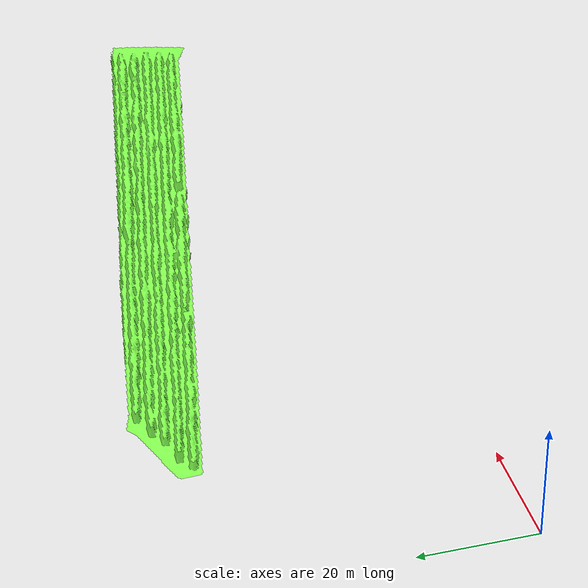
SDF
<?xml version='1.0'?>
<sdf version='1.10'>
  <model name='training_field'>
    <link name='link_0'>
      <pose>0 0 0 1.57 -0 0</pose>
      <self_collide>0</self_collide>
      <enable_wind>0</enable_wind>
      <kinematic>0</kinematic>
      <gravity>0</gravity>
      <visual name='visual'>
        <pose>0 0 0 0 0 0</pose>
        <geometry>
          <mesh>
            <uri>model://training_field/Data/training_field.obj</uri>
            <scale>275 275 275</scale>
          </mesh>
        </geometry>
        <material>
          <lighting>1</lighting>
          <shader type='pixel'>
            <normal_map>__default__</normal_map>
          </shader>
          <ambient>0.5 1 0.3 1</ambient>
          <diffuse>0.5 1 0.3 1</diffuse>
          <specular>0.1 0.1 0.1 1</specular>
          <emissive>0 0 0 1</emissive>
        </material>
        <cast_shadows>1</cast_shadows>
      </visual>
      <collision name='collision'>
        <laser_retro>1</laser_retro>
        <max_contacts>10</max_contacts>
        <pose>0 0 0 0 -0 0</pose>
        <geometry>
          <mesh>
            <uri>model://field1/Data/field1.obj</uri>
            <scale>275 275 275</scale>
          </mesh>
        </geometry>
        <surface>
          <contact>
            <collide_without_contact>1</collide_without_contact>
          </contact>
        </surface>
      </collision>
    </link>
    <static>true</static>
    <allow_auto_disable>1</allow_auto_disable>
    <pose>0 0 0 0 -0 0</pose>
  </model>
</sdf>
